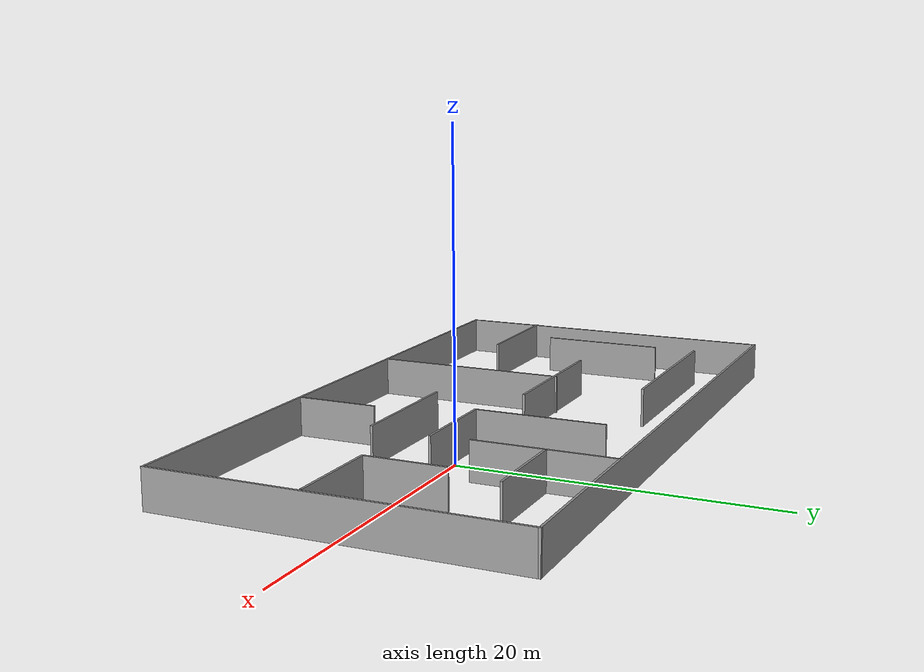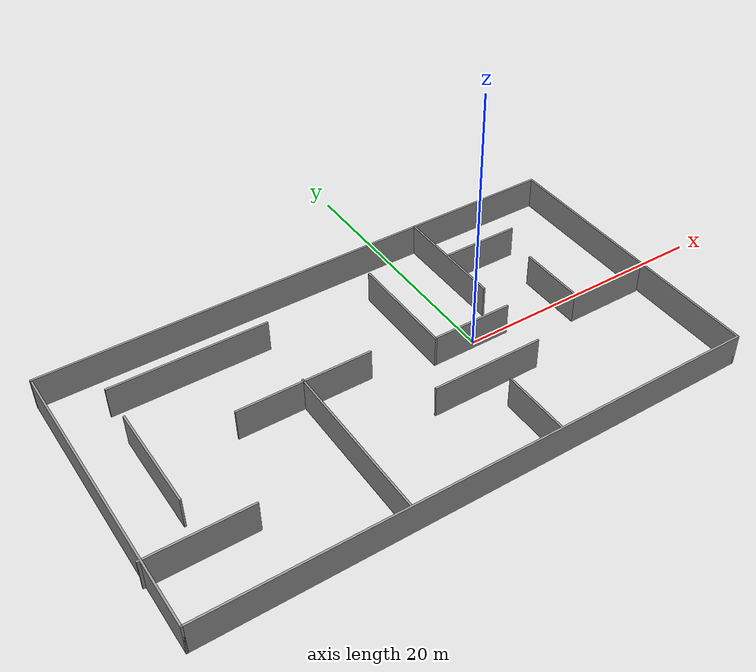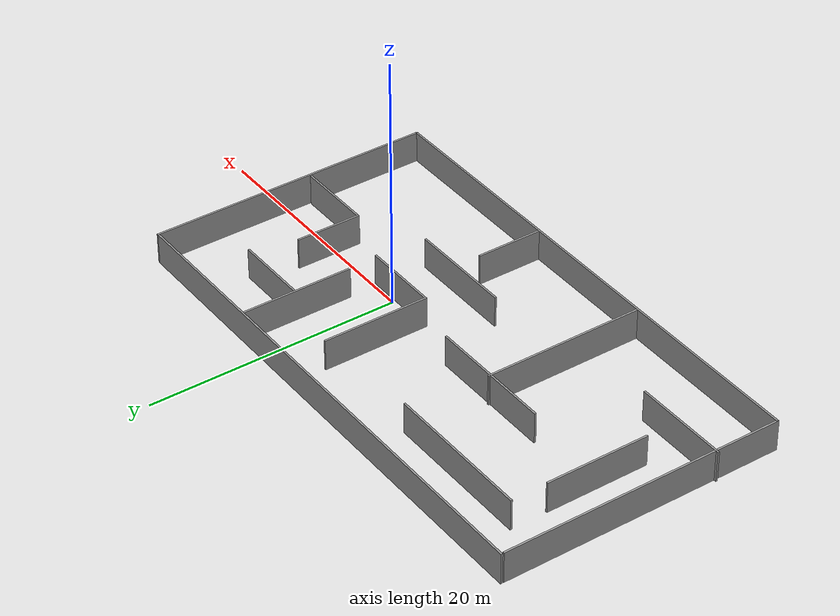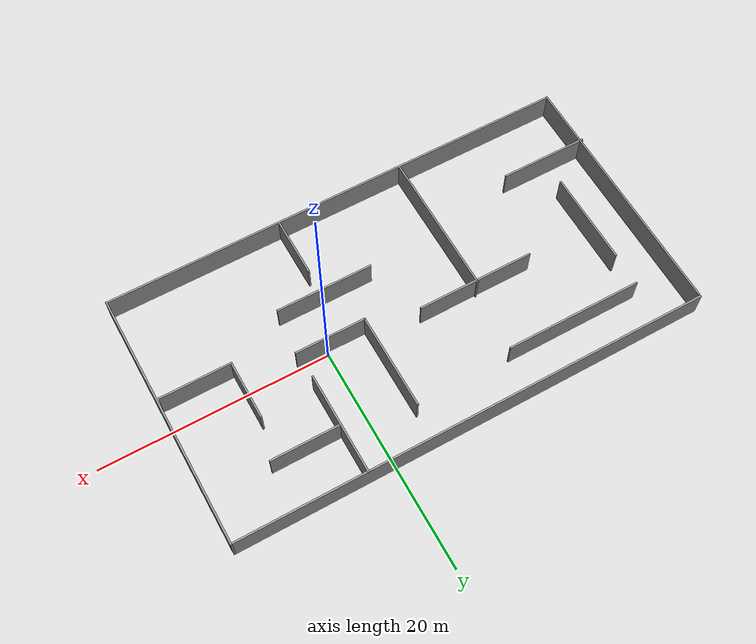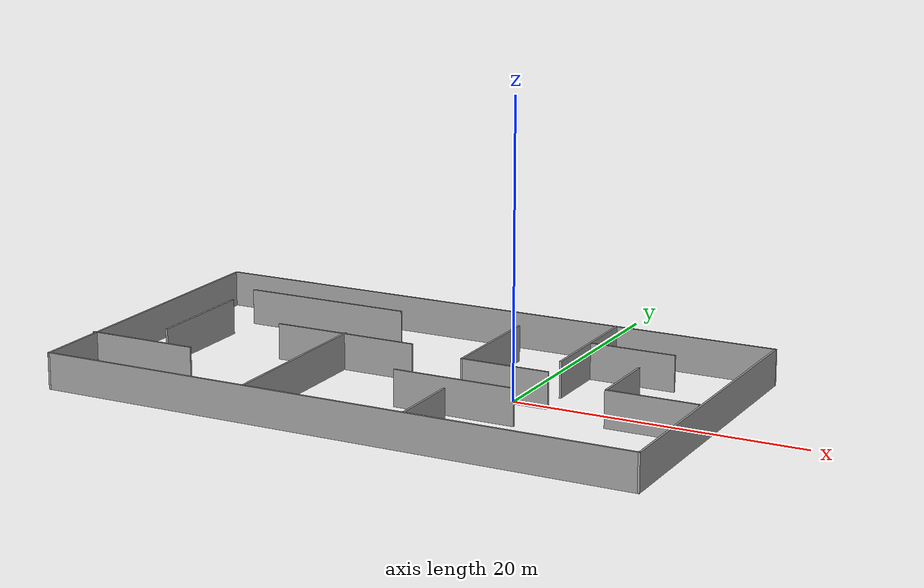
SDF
<?xml version='1.0'?>
<sdf version='1.7'>
  <model name='maze1'>
    <pose>-7.20829 -0.34997 0 0 -0 0</pose>
    <link name='Wall_1'>
      <collision name='Wall_1_Collision'>
        <geometry>
          <box>
            <size>22.5 0.15 2.5</size>
          </box>
        </geometry>
        <pose>0 0 1.25 0 -0 0</pose>
      </collision>
      <visual name='Wall_1_Visual'>
        <pose>0 0 1.25 0 -0 0</pose>
        <geometry>
          <box>
            <size>22.5 0.15 2.5</size>
          </box>
        </geometry>
        <material>
          <script>
            <uri>file://media/materials/scripts/gazebo.material</uri>
            <name>Gazebo/Grey</name>
          </script>
          <ambient>1 1 1 1</ambient>
        </material>
        <meta>
          <layer>0</layer>
        </meta>
      </visual>
      <pose>-20.7077 -0.125 0 0 -0 -1.5708</pose>
    </link>
    <link name='Wall_11'>
      <collision name='Wall_11_Collision'>
        <geometry>
          <box>
            <size>7.75 0.15 2.5</size>
          </box>
        </geometry>
        <pose>0 0 1.25 0 -0 0</pose>
      </collision>
      <visual name='Wall_11_Visual'>
        <pose>0 0 1.25 0 -0 0</pose>
        <geometry>
          <box>
            <size>7.75 0.15 2.5</size>
          </box>
        </geometry>
        <material>
          <script>
            <uri>file://media/materials/scripts/gazebo.material</uri>
            <name>Gazebo/Grey</name>
          </script>
          <ambient>1 1 1 1</ambient>
        </material>
        <meta>
          <layer>0</layer>
        </meta>
      </visual>
      <pose>-17.0923 -6.05475 0 0 -0 0</pose>
    </link>
    <link name='Wall_13'>
      <collision name='Wall_13_Collision'>
        <geometry>
          <box>
            <size>10.25 0.15 2.5</size>
          </box>
        </geometry>
        <pose>0 0 1.25 0 -0 0</pose>
      </collision>
      <visual name='Wall_13_Visual'>
        <pose>0 0 1.25 0 -0 0</pose>
        <geometry>
          <box>
            <size>10.25 0.15 2.5</size>
          </box>
        </geometry>
        <material>
          <script>
            <uri>file://media/materials/scripts/gazebo.material</uri>
            <name>Gazebo/Grey</name>
          </script>
          <ambient>1 1 1 1</ambient>
        </material>
        <meta>
          <layer>0</layer>
        </meta>
      </visual>
      <pose>-5.81325 1.3286 0 0 -0 0</pose>
    </link>
    <link name='Wall_15'>
      <collision name='Wall_15_Collision'>
        <geometry>
          <box>
            <size>12.75 0.15 2.5</size>
          </box>
        </geometry>
        <pose>0 0 1.25 0 -0 0</pose>
      </collision>
      <visual name='Wall_15_Visual'>
        <pose>0 0 1.25 0 -0 0</pose>
        <geometry>
          <box>
            <size>12.75 0.15 2.5</size>
          </box>
        </geometry>
        <material>
          <script>
            <uri>file://media/materials/scripts/gazebo.material</uri>
            <name>Gazebo/Grey</name>
          </script>
          <ambient>1 1 1 1</ambient>
        </material>
        <meta>
          <layer>0</layer>
        </meta>
      </visual>
      <pose>-5.87949 -4.84835 0 0 -0 -1.5708</pose>
    </link>
    <link name='Wall_17'>
      <collision name='Wall_17_Collision'>
        <geometry>
          <box>
            <size>8.5 0.15 2.5</size>
          </box>
        </geometry>
        <pose>0 0 1.25 0 -0 0</pose>
      </collision>
      <visual name='Wall_17_Visual'>
        <pose>0 0 1.25 0 -0 0</pose>
        <geometry>
          <box>
            <size>8.5 0.15 2.5</size>
          </box>
        </geometry>
        <material>
          <script>
            <uri>file://media/materials/scripts/gazebo.material</uri>
            <name>Gazebo/Grey</name>
          </script>
          <ambient>1 1 1 1</ambient>
        </material>
        <meta>
          <layer>0</layer>
        </meta>
      </visual>
      <pose>3.65733 4.16777 0 0 -0 -1.5708</pose>
    </link>
    <link name='Wall_18'>
      <collision name='Wall_18_Collision'>
        <geometry>
          <box>
            <size>6.25 0.15 2.5</size>
          </box>
        </geometry>
        <pose>0 0 1.25 0 -0 0</pose>
      </collision>
      <visual name='Wall_18_Visual'>
        <pose>0 0 1.25 0 -0 0</pose>
        <geometry>
          <box>
            <size>6.25 0.15 2.5</size>
          </box>
        </geometry>
        <material>
          <script>
            <uri>file://media/materials/scripts/gazebo.material</uri>
            <name>Gazebo/Grey</name>
          </script>
          <ambient>1 1 1 1</ambient>
        </material>
        <meta>
          <layer>0</layer>
        </meta>
      </visual>
      <pose>6.70733 -0.007226 0 0 -0 0</pose>
    </link>
    <link name='Wall_2'>
      <collision name='Wall_2_Collision'>
        <geometry>
          <box>
            <size>41.75 0.15 2.5</size>
          </box>
        </geometry>
        <pose>0 0 1.25 0 -0 0</pose>
      </collision>
      <visual name='Wall_2_Visual'>
        <pose>0 0 1.25 0 -0 0</pose>
        <geometry>
          <box>
            <size>41.75 0.15 2.5</size>
          </box>
        </geometry>
        <material>
          <script>
            <uri>file://media/materials/scripts/gazebo.material</uri>
            <name>Gazebo/Grey</name>
          </script>
          <ambient>1 1 1 1</ambient>
        </material>
        <meta>
          <layer>0</layer>
        </meta>
      </visual>
      <pose>0.092291 -11.3 0 0 -0 0</pose>
    </link>
    <link name='Wall_20'>
      <collision name='Wall_20_Collision'>
        <geometry>
          <box>
            <size>8.5 0.15 2.5</size>
          </box>
        </geometry>
        <pose>0 0 1.25 0 -0 0</pose>
      </collision>
      <visual name='Wall_20_Visual'>
        <pose>0 0 1.25 0 -0 0</pose>
        <geometry>
          <box>
            <size>8.5 0.15 2.5</size>
          </box>
        </geometry>
        <material>
          <script>
            <uri>file://media/materials/scripts/gazebo.material</uri>
            <name>Gazebo/Grey</name>
          </script>
          <ambient>1 1 1 1</ambient>
        </material>
        <meta>
          <layer>0</layer>
        </meta>
      </visual>
      <pose>5.1251 -4.02433 0 0 -0 0</pose>
    </link>
    <link name='Wall_22'>
      <collision name='Wall_22_Collision'>
        <geometry>
          <box>
            <size>5.25 0.15 2.5</size>
          </box>
        </geometry>
        <pose>0 0 1.25 0 -0 0</pose>
      </collision>
      <visual name='Wall_22_Visual'>
        <pose>0 0 1.25 0 -0 0</pose>
        <geometry>
          <box>
            <size>5.25 0.15 2.5</size>
          </box>
        </geometry>
        <material>
          <script>
            <uri>file://media/materials/scripts/gazebo.material</uri>
            <name>Gazebo/Grey</name>
          </script>
          <ambient>1 1 1 1</ambient>
        </material>
        <meta>
          <layer>0</layer>
        </meta>
      </visual>
      <pose>5.50317 -8.60475 0 0 -0 -1.5708</pose>
    </link>
    <link name='Wall_24'>
      <collision name='Wall_24_Collision'>
        <geometry>
          <box>
            <size>9 0.15 2.5</size>
          </box>
        </geometry>
        <pose>0 0 1.25 0 -0 0</pose>
      </collision>
      <visual name='Wall_24_Visual'>
        <pose>0 0 1.25 0 -0 0</pose>
        <geometry>
          <box>
            <size>9 0.15 2.5</size>
          </box>
        </geometry>
        <material>
          <script>
            <uri>file://media/materials/scripts/gazebo.material</uri>
            <name>Gazebo/Grey</name>
          </script>
          <ambient>1 1 1 1</ambient>
        </material>
        <meta>
          <layer>0</layer>
        </meta>
      </visual>
      <pose>9.56401 6.87111 0 0 -0 -1.5708</pose>
    </link>
    <link name='Wall_26'>
      <collision name='Wall_26_Collision'>
        <geometry>
          <box>
            <size>6 0.15 2.5</size>
          </box>
        </geometry>
        <pose>0 0 1.25 0 -0 0</pose>
      </collision>
      <visual name='Wall_26_Visual'>
        <pose>0 0 1.25 0 -0 0</pose>
        <geometry>
          <box>
            <size>6 0.15 2.5</size>
          </box>
        </geometry>
        <material>
          <script>
            <uri>file://media/materials/scripts/gazebo.material</uri>
            <name>Gazebo/Grey</name>
          </script>
          <ambient>1 1 1 1</ambient>
        </material>
        <meta>
          <layer>0</layer>
        </meta>
      </visual>
      <pose>12.6121 6.98916 0 0 -0 0</pose>
    </link>
    <link name='Wall_28'>
      <collision name='Wall_28_Collision'>
        <geometry>
          <box>
            <size>5.25 0.15 2.5</size>
          </box>
        </geometry>
        <pose>0 0 1.25 0 -0 0</pose>
      </collision>
      <visual name='Wall_28_Visual'>
        <pose>0 0 1.25 0 -0 0</pose>
        <geometry>
          <box>
            <size>5.25 0.15 2.5</size>
          </box>
        </geometry>
        <material>
          <script>
            <uri>file://media/materials/scripts/gazebo.material</uri>
            <name>Gazebo/Grey</name>
          </script>
          <ambient>1 1 1 1</ambient>
        </material>
        <meta>
          <layer>0</layer>
        </meta>
      </visual>
      <pose>14.5478 0.870543 0 0 -0 -1.5708</pose>
    </link>
    <link name='Wall_29'>
      <collision name='Wall_29_Collision'>
        <geometry>
          <box>
            <size>6.25 0.15 2.5</size>
          </box>
        </geometry>
        <pose>0 0 1.25 0 -0 0</pose>
      </collision>
      <visual name='Wall_29_Visual'>
        <pose>0 0 1.25 0 -0 0</pose>
        <geometry>
          <box>
            <size>6.25 0.15 2.5</size>
          </box>
        </geometry>
        <material>
          <script>
            <uri>file://media/materials/scripts/gazebo.material</uri>
            <name>Gazebo/Grey</name>
          </script>
          <ambient>1 1 1 1</ambient>
        </material>
        <meta>
          <layer>0</layer>
        </meta>
      </visual>
      <pose>17.5978 -1.67946 0 0 -0 0</pose>
    </link>
    <link name='Wall_3'>
      <collision name='Wall_3_Collision'>
        <geometry>
          <box>
            <size>22.75 0.15 2.5</size>
          </box>
        </geometry>
        <pose>0 0 1.25 0 -0 0</pose>
      </collision>
      <visual name='Wall_3_Visual'>
        <pose>0 0 1.25 0 -0 0</pose>
        <geometry>
          <box>
            <size>22.75 0.15 2.5</size>
          </box>
        </geometry>
        <material>
          <script>
            <uri>file://media/materials/scripts/gazebo.material</uri>
            <name>Gazebo/Grey</name>
          </script>
          <ambient>1 1 1 1</ambient>
        </material>
        <meta>
          <layer>0</layer>
        </meta>
      </visual>
      <pose>20.8923 0 0 0 -0 1.5708</pose>
    </link>
    <link name='Wall_4'>
      <collision name='Wall_4_Collision'>
        <geometry>
          <box>
            <size>41.75 0.15 2.5</size>
          </box>
        </geometry>
        <pose>0 0 1.25 0 -0 0</pose>
      </collision>
      <visual name='Wall_4_Visual'>
        <pose>0 0 1.25 0 -0 0</pose>
        <geometry>
          <box>
            <size>41.75 0.15 2.5</size>
          </box>
        </geometry>
        <material>
          <script>
            <uri>file://media/materials/scripts/gazebo.material</uri>
            <name>Gazebo/Grey</name>
          </script>
          <ambient>1 1 1 1</ambient>
        </material>
        <meta>
          <layer>0</layer>
        </meta>
      </visual>
      <pose>0.092291 11.3 0 0 -0 3.14159</pose>
    </link>
    <link name='Wall_7'>
      <collision name='Wall_7_Collision'>
        <geometry>
          <box>
            <size>12 0.15 2.5</size>
          </box>
        </geometry>
        <pose>0 0 1.25 0 -0 0</pose>
      </collision>
      <visual name='Wall_7_Visual'>
        <pose>0 0 1.25 0 -0 0</pose>
        <geometry>
          <box>
            <size>12 0.15 2.5</size>
          </box>
        </geometry>
        <material>
          <script>
            <uri>file://media/materials/scripts/gazebo.material</uri>
            <name>Gazebo/Grey</name>
          </script>
          <ambient>1 1 1 1</ambient>
        </material>
        <meta>
          <layer>0</layer>
        </meta>
      </visual>
      <pose>-11.0295 7.78902 0 0 -0 0</pose>
    </link>
    <link name='Wall_9'>
      <collision name='Wall_9_Collision'>
        <geometry>
          <box>
            <size>8.25 0.15 2.5</size>
          </box>
        </geometry>
        <pose>0 0 1.25 0 -0 0</pose>
      </collision>
      <visual name='Wall_9_Visual'>
        <pose>0 0 1.25 0 -0 0</pose>
        <geometry>
          <box>
            <size>8.25 0.15 2.5</size>
          </box>
        </geometry>
        <material>
          <script>
            <uri>file://media/materials/scripts/gazebo.material</uri>
            <name>Gazebo/Grey</name>
          </script>
          <ambient>1 1 1 1</ambient>
        </material>
        <meta>
          <layer>0</layer>
        </meta>
      </visual>
      <pose>-16.9545 0.785685 0 0 -0 -1.5708</pose>
    </link>
    <static>1</static>
  </model>
</sdf>
